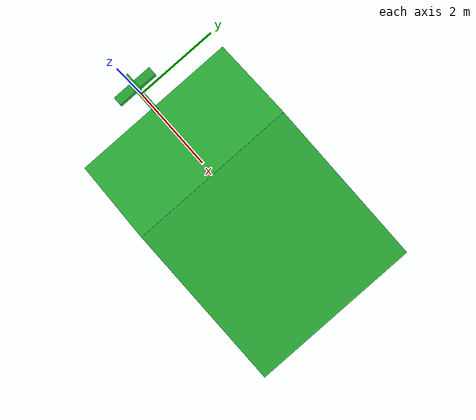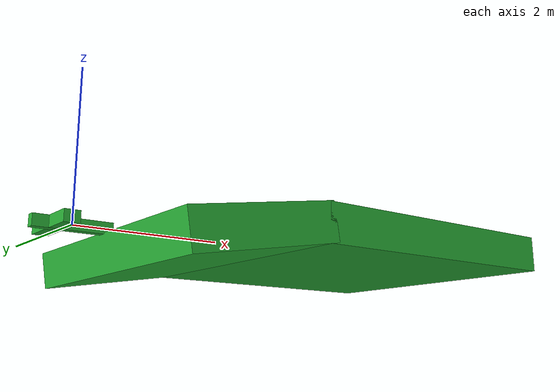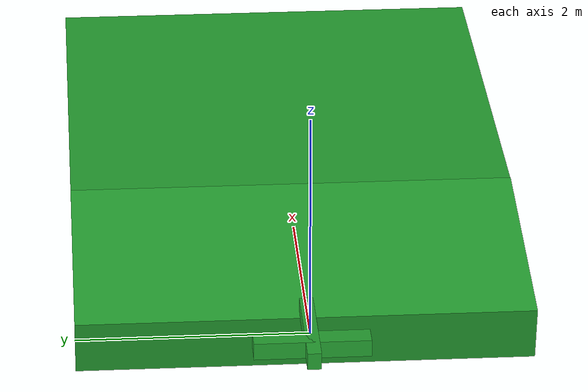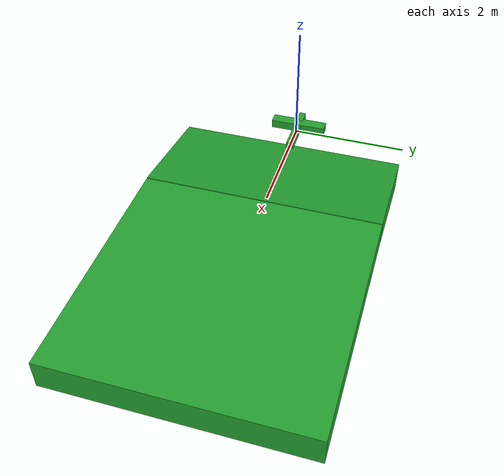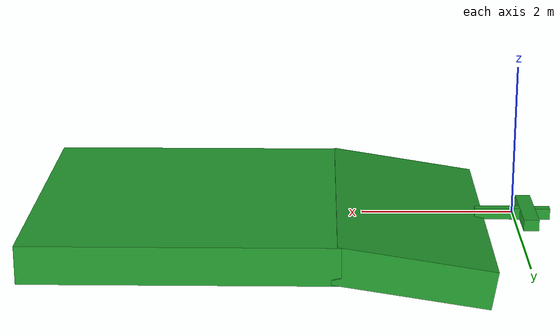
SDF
<sdf version="1.6">
    <model name="pole">
        <static>true</static>
        <link name="link_mid">
            <collision name="collision">
                <geometry>
                    <box>
                        <size>1 0.12 0.15</size>
                    </box>
                </geometry>
                <pose>0 0 0 0 0 0</pose>
            </collision>
            <visual name="visual">
                <geometry>
                    <box>
                        <size>1 0.12 0.15</size>
                    </box>
                </geometry>
                <material>
                    <script>
                        <uri>file://media/materials/scripts/gazebo.material</uri>
                        <name>Gazebo/Green</name>
                    </script>
                </material>
                <pose>0 0 0 0 0 0</pose>
            </visual>
            <pose>0 0 0 0 0 0</pose>
        </link>
        <link name="link_back">
            <collision name="collision">
                <geometry>
                    <box>
                        <size>0.2 1 0.15</size>
                    </box>
                </geometry>
                <pose>-0.1 0 0 0 0 0</pose>
            </collision>
            <visual name="visual">
                <geometry>
                    <box>
                        <size>0.2 1 0.15</size>
                    </box>
                </geometry>
                <material>
                    <script>
                        <uri>file://media/materials/scripts/gazebo.material</uri>
                        <name>Gazebo/Green</name>
                    </script>
                </material>
                <pose>-0.1 0 0 0 0 0</pose>
            </visual>
            <pose>-0.1 0 0 0 0 0</pose>
        </link>
        <link name="ramp">
            <collision name="collision">
                <geometry>
                    <box>
                        <size>2 4 0.5</size>
                    </box>
                </geometry>
                <pose>0.7 0 -0.1 0 -0.08 0</pose>
            </collision>
            <visual name="visual">
                <geometry>
                    <box>
                        <size>2 4 0.5</size>
                    </box>
                </geometry>
                <material>
                    <script>
                        <uri>file://media/materials/scripts/gazebo.material</uri>
                        <name>Gazebo/Green</name>
                    </script>
                </material>
                <pose>0.7 0 -0.1 0 -0.08 0</pose>
            </visual>
            <pose>0.7 0 -0.1 0 -0.08 0</pose> <!-- Rotation for ramp angle -->
        </link>
        <link name="platform">
              <collision name="collision">
                <geometry>
                  <box>
                    <size>4 4 0.5</size>
                  </box>
                </geometry>
                <pose>2.15 0 0 0 0 0</pose>
              </collision>
              <visual name="visual">
                <geometry>
                  <box>
                    <size>4 4 0.5</size>
                  </box>
                </geometry>
                <material>
                  <script>
                    <uri>file://media/materials/scripts/gazebo.material</uri>
                    <name>Gazebo/Green</name>
                  </script>
                </material>
                <pose>2.15 0 0 0 0 0</pose>
              </visual>
              <pose>2.15 0 0 0 0 0</pose>
            </link>

    </model>
</sdf>
